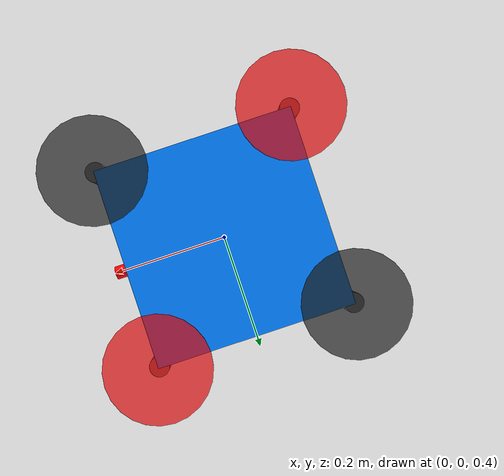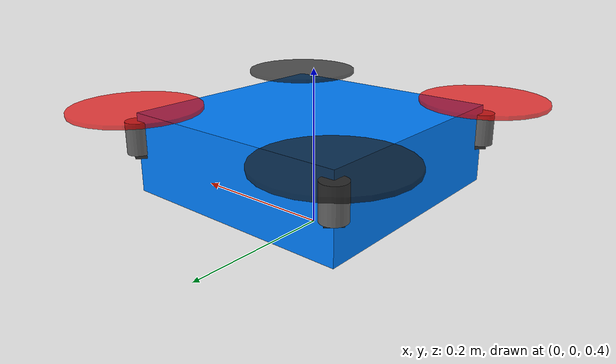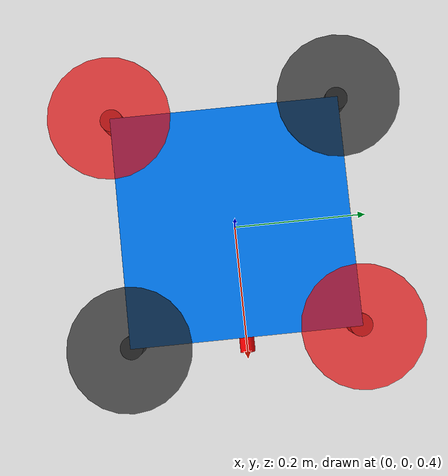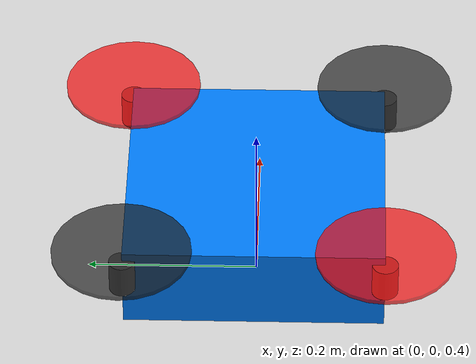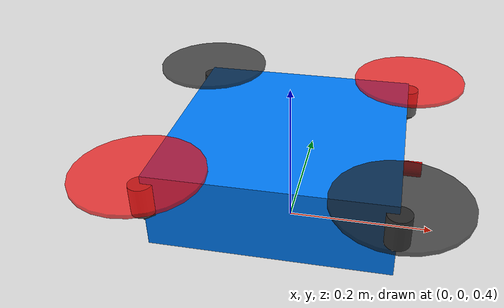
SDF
<?xml version="1.0"?>
<sdf version="1.9">
  <model name="quadrotor">
    <pose>0 0 0.5 0 0 0</pose>

    <!-- Base Link (Drone Body) -->
    <link name="base_link">
      <pose>0 0 0 0 0 0</pose>

      <!-- Inertial Properties -->
      <inertial>
        <mass>1.0</mass>
        <inertia>
          <ixx>0.00833</ixx>
          <iyy>0.00833</iyy>
          <izz>0.015</izz>
          <ixy>0</ixy>
          <ixz>0</ixz>
          <iyz>0</iyz>
        </inertia>
      </inertial>

      <!-- Collision Geometry -->
      <collision name="base_collision">
        <geometry>
          <box>
            <size>0.3 0.3 0.1</size>
          </box>
        </geometry>
      </collision>

      <sensor name='collision_sensor' type='contact'>
        <update_rate>100.0</update_rate>
        <always_on>1</always_on>
        <contact>
          <collision>base_collision</collision>
        </contact>
        <visualize>true</visualize>
      </sensor>

      <!-- Visual Geometry - Body -->
      <visual name="base_visual">
        <geometry>
          <box>
            <size>0.3 0.3 0.1</size>
          </box>
        </geometry>
        <material>
          <ambient>0.0 0.5 1.0 1</ambient>
          <diffuse>0.0 0.5 1.0 1</diffuse>
          <specular>0.1 0.1 0.1 1</specular>
        </material>
      </visual>

      <!-- Arms (retained for visual detail) -->
      <visual name="arm_front_left">
        <pose>0.1 0.1 0 0 0 0.785398</pose>
        <geometry>
          <box>
            <size>0.15 0.02 0.01</size>
          </box>
        </geometry>
        <material>
          <ambient>0.1 0.1 0.1 1</ambient>
          <diffuse>0.2 0.2 0.2 1</diffuse>
        </material>
      </visual>

      <visual name="arm_front_right">
        <pose>-0.1 0.1 0 0 0 -0.785398</pose>
        <geometry>
          <box>
            <size>0.15 0.02 0.01</size>
          </box>
        </geometry>
        <material>
          <ambient>0.1 0.1 0.1 1</ambient>
          <diffuse>0.2 0.2 0.2 1</diffuse>
        </material>
      </visual>

      <visual name="arm_back_left">
        <pose>0.1 -0.1 0 0 0 -0.785398</pose>
        <geometry>
          <box>
            <size>0.15 0.02 0.01</size>
          </box>
        </geometry>
        <material>
          <ambient>0.1 0.1 0.1 1</ambient>
          <diffuse>0.2 0.2 0.2 1</diffuse>
        </material>
      </visual>

      <visual name="arm_back_right">
        <pose>-0.1 -0.1 0 0 0 0.785398</pose>
        <geometry>
          <box>
            <size>0.15 0.02 0.01</size>
          </box>
        </geometry>
        <material>
          <ambient>0.1 0.1 0.1 1</ambient>
          <diffuse>0.2 0.2 0.2 1</diffuse>
        </material>
      </visual>

      <!-- Motor Mounts -->
      <visual name="motor_fl">
        <pose>0.15 0.15 0.02 0 0 0</pose>
        <geometry>
          <cylinder>
            <radius>0.015</radius>
            <length>0.04</length>
          </cylinder>
        </geometry>
        <material>
          <ambient>0.3 0.3 0.3 1</ambient>
          <diffuse>0.4 0.4 0.4 1</diffuse>
        </material>
      </visual>

      <visual name="motor_fr">
        <pose>-0.15 0.15 0.02 0 0 0</pose>
        <geometry>
          <cylinder>
            <radius>0.015</radius>
            <length>0.04</length>
          </cylinder>
        </geometry>
        <material>
          <ambient>0.3 0.3 0.3 1</ambient>
          <diffuse>0.4 0.4 0.4 1</diffuse>
        </material>
      </visual>

      <visual name="motor_bl">
        <pose>0.15 -0.15 0.02 0 0 0</pose>
        <geometry>
          <cylinder>
            <radius>0.015</radius>
            <length>0.04</length>
          </cylinder>
        </geometry>
        <material>
          <ambient>0.3 0.3 0.3 1</ambient>
          <diffuse>0.4 0.4 0.4 1</diffuse>
        </material>
      </visual>

      <visual name="motor_br">
        <pose>-0.15 -0.15 0.02 0 0 0</pose>
        <geometry>
          <cylinder>
            <radius>0.015</radius>
            <length>0.04</length>
          </cylinder>
        </geometry>
        <material>
          <ambient>0.3 0.3 0.3 1</ambient>
          <diffuse>0.4 0.4 0.4 1</diffuse>
        </material>
      </visual>

      <!-- Propellers -->
      <visual name="prop_fl">
        <pose>0.15 0.15 0.055 0 0 0</pose>
        <geometry>
          <cylinder>
            <radius>0.08</radius>
            <length>0.005</length>
          </cylinder>
        </geometry>
        <material>
          <ambient>1.0 0.0 0.0 0.7</ambient>
          <diffuse>1.0 0.0 0.0 0.7</diffuse>
          <specular>0.5 0.5 0.5 0.7</specular>
        </material>
      </visual>

      <visual name="prop_fr">
        <pose>-0.15 0.15 0.055 0 0 0</pose>
        <geometry>
          <cylinder>
            <radius>0.08</radius>
            <length>0.005</length>
          </cylinder>
        </geometry>
        <material>
          <ambient>0.0 0.0 0.0 0.7</ambient>
          <diffuse>0.1 0.1 0.1 0.7</diffuse>
          <specular>0.3 0.3 0.3 0.7</specular>
        </material>
      </visual>

      <visual name="prop_bl">
        <pose>0.15 -0.15 0.055 0 0 0</pose>
        <geometry>
          <cylinder>
            <radius>0.08</radius>
            <length>0.005</length>
          </cylinder>
        </geometry>
        <material>
          <ambient>0.0 0.0 0.0 0.7</ambient>
          <diffuse>0.1 0.1 0.1 0.7</diffuse>
          <specular>0.3 0.3 0.3 0.7</specular>
        </material>
      </visual>

      <visual name="prop_br">
        <pose>-0.15 -0.15 0.055 0 0 0</pose>
        <geometry>
          <cylinder>
            <radius>0.08</radius>
            <length>0.005</length>
          </cylinder>
        </geometry>
        <material>
          <ambient>1.0 0.0 0.0 0.7</ambient>
          <diffuse>1.0 0.0 0.0 0.7</diffuse>
          <specular>0.5 0.5 0.5 0.7</specular>
        </material>
      </visual>

      <!-- Front Marker -->
      <visual name="front_marker">
        <pose>0.16 0 0 0 1.5708 0</pose>
        <geometry>
          <cylinder>
            <radius>0.01</radius>
            <length>0.03</length>
          </cylinder>
        </geometry>
        <material>
          <ambient>1.0 0.0 0.0 1</ambient>
          <diffuse>1.0 0.0 0.0 1</diffuse>
        </material>
      </visual>

      <!-- IMU Sensor -->
      <sensor name="imu_sensor" type="imu">
        <always_on>1</always_on>
        <update_rate>100</update_rate>
        <topic>/drone/imu</topic>
        <imu>
          <angular_velocity>
            <x>
              <noise type="gaussian">
                <mean>0.0</mean>
                <stddev>2e-4</stddev>
              </noise>
            </x>
            <y>
              <noise type="gaussian">
                <mean>0.0</mean>
                <stddev>2e-4</stddev>
              </noise>
            </y>
            <z>
              <noise type="gaussian">
                <mean>0.0</mean>
                <stddev>2e-4</stddev>
              </noise>
            </z>
          </angular_velocity>
          <linear_acceleration>
            <x>
              <noise type="gaussian">
                <mean>0.0</mean>
                <stddev>1.7e-2</stddev>
              </noise>
            </x>
            <y>
              <noise type="gaussian">
                <mean>0.0</mean>
                <stddev>1.7e-2</stddev>
              </noise>
            </y>
            <z>
              <noise type="gaussian">
                <mean>0.0</mean>
                <stddev>1.7e-2</stddev>
              </noise>
            </z>
          </linear_acceleration>
        </imu>
      </sensor>

      <sensor name="lidar_up" type="gpu_lidar">
        <pose>0 0 0.06 0 0 0</pose>
        <always_on>1</always_on>
        <update_rate>10</update_rate>
        <visualize>true</visualize>
        <topic>/drone/lidar/up</topic>
        <lidar>
          <scan>
            <horizontal>
              <samples>64</samples>
              <resolution>1</resolution>
              <min_angle>-1.57079</min_angle>
              <max_angle>1.57079</max_angle>
            </horizontal>
            <vertical>
              <samples>8</samples>
              <resolution>1</resolution>
              <min_angle>0.0</min_angle>
              <max_angle>0.785398</max_angle>
            </vertical>
          </scan>
          <range>
            <min>0.1</min>
            <max>15.0</max>
            <resolution>0.01</resolution>
          </range>
          <noise>
            <type>gaussian</type>
            <mean>0.0</mean>
            <stddev>0.01</stddev>
          </noise>
        </lidar>
      </sensor>

      <sensor name="lidar_down" type="gpu_lidar">
        <pose>0 0 -0.06 0 0 0</pose>
        <always_on>1</always_on>
        <update_rate>10</update_rate>
        <visualize>true</visualize>
        <topic>/drone/lidar/down</topic>
        <lidar>
          <scan>
            <horizontal>
              <samples>64</samples>
              <resolution>1</resolution>
              <min_angle>-1.57079</min_angle>
              <max_angle>1.57079</max_angle>
            </horizontal>
            <vertical>
              <samples>8</samples>
              <resolution>1</resolution>
              <min_angle>-0.785398</min_angle>
              <max_angle>0.0</max_angle>
            </vertical>
          </scan>
          <range>
            <min>0.1</min>
            <max>15.0</max>
            <resolution>0.01</resolution>
          </range>
          <noise>
            <type>gaussian</type>
            <mean>0.0</mean>
            <stddev>0.01</stddev>
          </noise>
        </lidar>
      </sensor>

      <!-- Forward Lidar -->
      <sensor name="lidar_forward" type="gpu_lidar">
        <pose>0.15 0 0 0 0 0</pose>
        <always_on>1</always_on>
        <update_rate>10</update_rate>
        <visualize>true</visualize>
        <topic>/drone/lidar/forward</topic>
        <lidar>
          <scan>
            <horizontal>
              <samples>32</samples>
              <resolution>1</resolution>
              <min_angle>-0.2</min_angle>
              <max_angle>0.2</max_angle>
            </horizontal>
            <vertical>
              <samples>8</samples>
              <resolution>1</resolution>
              <min_angle>-0.2</min_angle>
              <max_angle>0.2</max_angle>
            </vertical>
          </scan>
          <range>
            <min>0.1</min>
            <max>20.0</max>
            <resolution>0.01</resolution>
          </range>
        </lidar>
      </sensor>

    </link>

    <!-- Plugins -->
    <plugin filename="gz-sim-imu-system" name="gz::sim::systems::Imu">
    </plugin>

    <plugin filename="gz-sim-velocity-control-system" name="gz::sim::systems::VelocityControl">
      <initial_linear>0 0 0</initial_linear>
      <initial_angular>0 0 0</initial_angular>
    </plugin>

    <plugin filename="ignition-gazebo-odometry-publisher-system"
      name="ignition::gazebo::systems::OdometryPublisher">
      <odom_frame>odom</odom_frame>
      <robot_base_frame>base_link</robot_base_frame>
      <odom_publish_frequency>50</odom_publish_frequency>
      <odom_topic>/model/quadrotor/odometry</odom_topic>
    </plugin>

  </model>
</sdf>
